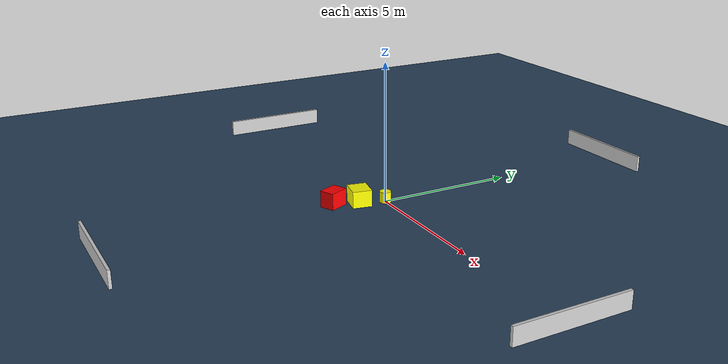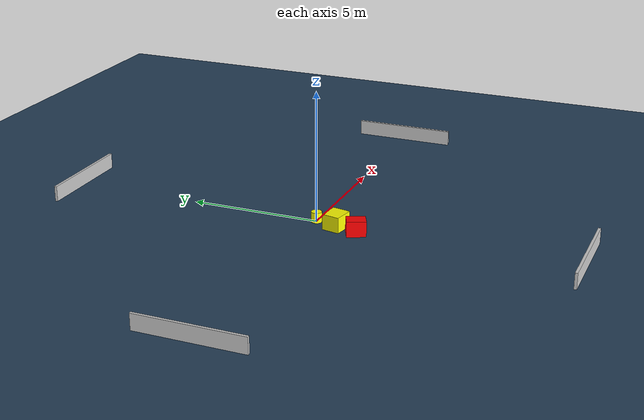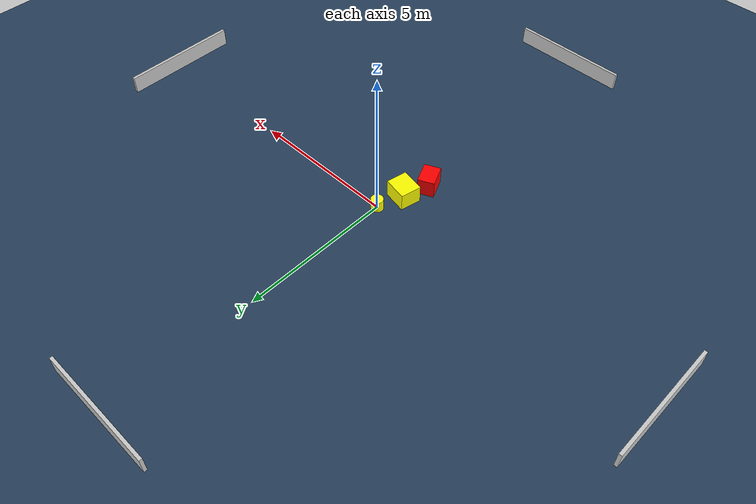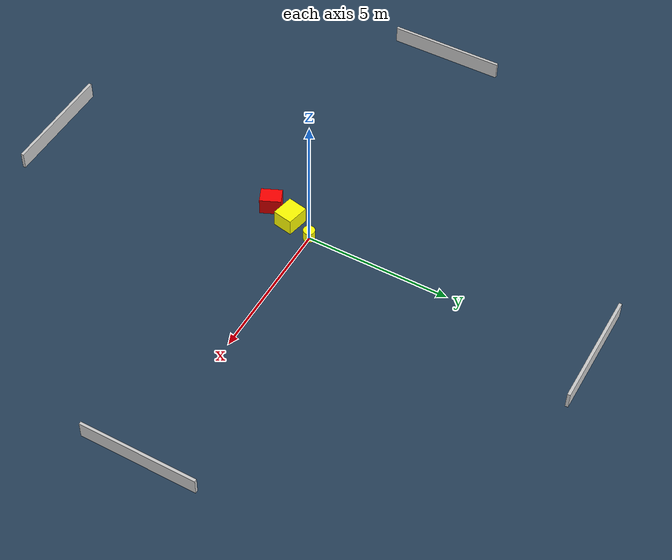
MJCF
<?xml version="1.0" ?>
<mujoco model="generated_environment">
  <option timestep="0.01" integrator="RK4" cone="elliptic"/>
  <default>
    <geom density="1"/>
  </default>
  <asset>
    <texture builtin="gradient" height="3072" name="skybox" rgb1="0.3 0.5 0.7" rgb2="0 0 0" type="skybox" width="512"/>
    <texture builtin="checker" height="300" name="groundplane" rgb1="0.2 0.3 0.4" rgb2="0.1 0.2 0.3" type="2d" width="300"/>
    <material name="groundplane" reflectance="0.2" texrepeat="5 5" texture="groundplane"/>
  </asset>
  <worldbody>
    <light dir="0 0 -1" directional="true" pos="0 0 1.5"/>
    <geom condim="3" friction="0.5 0.005 0.001" material="groundplane" name="floor" pos="0 0 0" size="0 0 0.05" type="plane"/>
    <body name="walls">
      <geom name="wall_1" condim="4" pos="-10.0 0.0 0.3" rgba="0.800000011920929 0.800000011920929 0.800000011920929 1.0" size="0.05 2.0 0.3" type="box"/>
      <geom name="wall_2" condim="4" pos="10.0 0.0 0.3" rgba="0.800000011920929 0.800000011920929 0.800000011920929 1.0" size="0.05 2.0 0.3" type="box"/>
      <geom name="wall_3" condim="4" pos="0.0 -10.0 0.3" rgba="0.800000011920929 0.800000011920929 0.800000011920929 1.0" size="2.0 0.05 0.3" type="box"/>
      <geom name="wall_4" condim="4" pos="0.0 10.0 0.3" rgba="0.800000011920929 0.800000011920929 0.800000011920929 1.0" size="2.0 0.05 0.3" type="box"/>
    </body>
    <body name="robot">
      <joint name="joint_x" type="slide" pos="0 0 0" axis="1 0 0"/>
      <joint name="joint_y" type="slide" pos="0 0 0" axis="0 1 0"/>
      <geom name="robot" type="cylinder" pos="0.0 0.0 0.2" size="0.2 0.2 0.0" mass="5.0" friction="1.0 0.005 0.0001" condim="4" rgba="1.0 1.0 0.0 1.0"/>
    </body>
    <body name="obstacle_1_movable">
      <geom name="obstacle_1_movable" condim="4" pos="-0.28714060297003186 -0.8796591411997708 0.3" euler="0 0 168.6263107418638" friction="0.0 0.005 0.001" rgba="1.0 1.0 0.0 1.0" size="0.3924568471054434 0.3473852846837532 0.3" type="box" mass="0.1"/>
      <joint type="free"/>
    </body>
    <body name="obstacle_2_static">
      <geom name="obstacle_2_static" condim="4" pos="-0.554250461265907 -1.7623390746310257 0.3" euler="0 0 114.40834291246745" friction="0.0 0.005 0.001" rgba="1.0 0.0 0.0 1.0" size="0.3629339536808327 0.2748291010042123 0.3" type="box"/>
    </body>
  </worldbody>
  <actuator>
    <motor name="actuator_x" joint="joint_x" gear="1" ctrlrange="-1 1"/>
    <motor name="actuator_y" joint="joint_y" gear="1" ctrlrange="-1 1"/>
  </actuator>
</mujoco>
